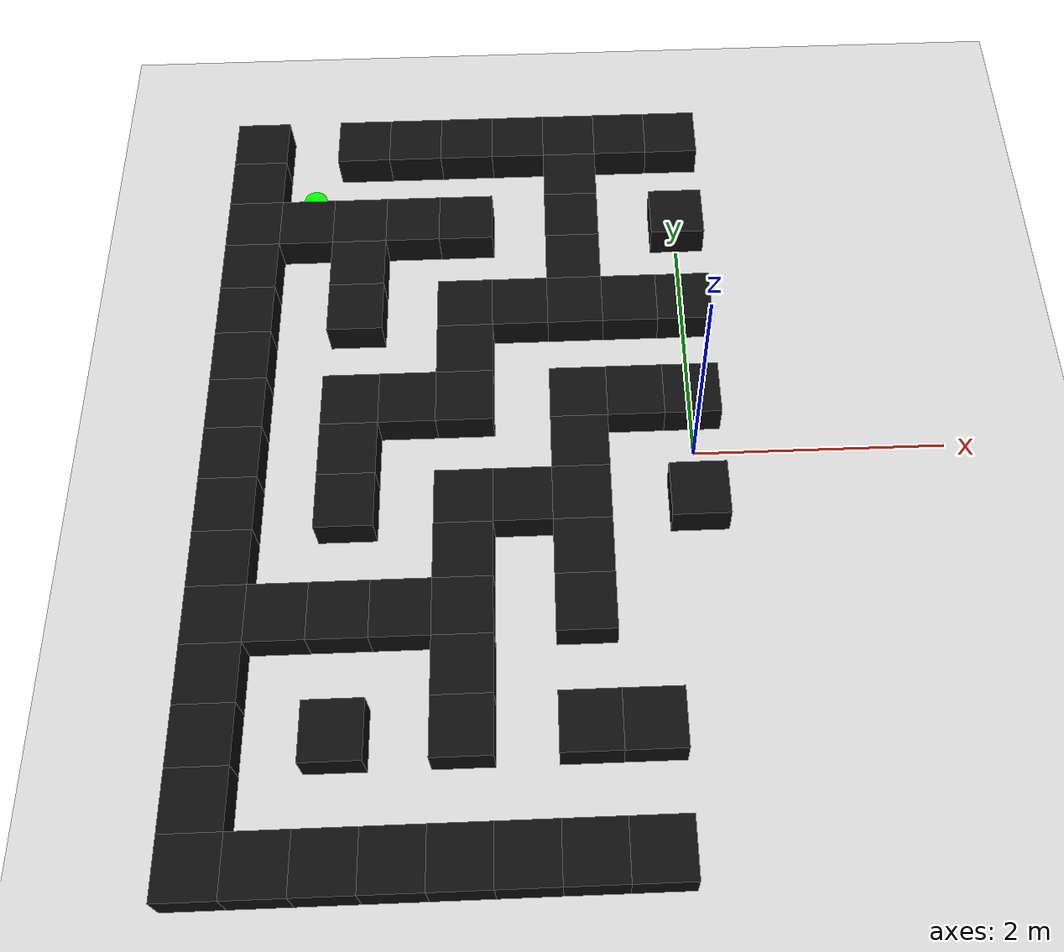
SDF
<sdf version="1.9">
 <world name="maze_islands_world">
  <model name="ground_plane">
   <static>true</static>
   <link name="link">
    <collision name="collision">
     <geometry><plane><normal>0 0 1</normal><size>30 30</size></plane></geometry>
    </collision>
    <visual name="visual">
     <geometry><plane><normal>0 0 1</normal><size>30 30</size></plane></geometry>
     <material><ambient>0.82 0.82 0.82 1</ambient><diffuse>0.82 0.82 0.82 1</diffuse></material>
    </visual>
   </link>
  </model>
  <model name="wall_0">
   <static>true</static>
   <pose>-3.6 3.15 0.14 0 0 0</pose>
   <link name="link">
    <collision name="collision"><geometry><box><size>0.45 0.45 0.28</size></box></geometry></collision>
    <visual name="visual">
     <geometry><box><size>0.45 0.45 0.28</size></box></geometry>
     <material><ambient>0.05 0.05 0.05 1</ambient><diffuse>0.05 0.05 0.05 1</diffuse></material>
    </visual>
   </link>
  </model>
  <model name="wall_1">
   <static>true</static>
   <pose>-2.7 3.15 0.14 0 0 0</pose>
   <link name="link">
    <collision name="collision"><geometry><box><size>0.45 0.45 0.28</size></box></geometry></collision>
    <visual name="visual">
     <geometry><box><size>0.45 0.45 0.28</size></box></geometry>
     <material><ambient>0.05 0.05 0.05 1</ambient><diffuse>0.05 0.05 0.05 1</diffuse></material>
    </visual>
   </link>
  </model>
  <model name="wall_2">
   <static>true</static>
   <pose>-2.25 3.15 0.14 0 0 0</pose>
   <link name="link">
    <collision name="collision"><geometry><box><size>0.45 0.45 0.28</size></box></geometry></collision>
    <visual name="visual">
     <geometry><box><size>0.45 0.45 0.28</size></box></geometry>
     <material><ambient>0.05 0.05 0.05 1</ambient><diffuse>0.05 0.05 0.05 1</diffuse></material>
    </visual>
   </link>
  </model>
  <model name="wall_3">
   <static>true</static>
   <pose>-1.8 3.15 0.14 0 0 0</pose>
   <link name="link">
    <collision name="collision"><geometry><box><size>0.45 0.45 0.28</size></box></geometry></collision>
    <visual name="visual">
     <geometry><box><size>0.45 0.45 0.28</size></box></geometry>
     <material><ambient>0.05 0.05 0.05 1</ambient><diffuse>0.05 0.05 0.05 1</diffuse></material>
    </visual>
   </link>
  </model>
  <model name="wall_4">
   <static>true</static>
   <pose>-1.35 3.15 0.14 0 0 0</pose>
   <link name="link">
    <collision name="collision"><geometry><box><size>0.45 0.45 0.28</size></box></geometry></collision>
    <visual name="visual">
     <geometry><box><size>0.45 0.45 0.28</size></box></geometry>
     <material><ambient>0.05 0.05 0.05 1</ambient><diffuse>0.05 0.05 0.05 1</diffuse></material>
    </visual>
   </link>
  </model>
  <model name="wall_5">
   <static>true</static>
   <pose>-0.9 3.15 0.14 0 0 0</pose>
   <link name="link">
    <collision name="collision"><geometry><box><size>0.45 0.45 0.28</size></box></geometry></collision>
    <visual name="visual">
     <geometry><box><size>0.45 0.45 0.28</size></box></geometry>
     <material><ambient>0.05 0.05 0.05 1</ambient><diffuse>0.05 0.05 0.05 1</diffuse></material>
    </visual>
   </link>
  </model>
  <model name="wall_6">
   <static>true</static>
   <pose>-0.45 3.15 0.14 0 0 0</pose>
   <link name="link">
    <collision name="collision"><geometry><box><size>0.45 0.45 0.28</size></box></geometry></collision>
    <visual name="visual">
     <geometry><box><size>0.45 0.45 0.28</size></box></geometry>
     <material><ambient>0.05 0.05 0.05 1</ambient><diffuse>0.05 0.05 0.05 1</diffuse></material>
    </visual>
   </link>
  </model>
  <model name="wall_7">
   <static>true</static>
   <pose>0.0 3.15 0.14 0 0 0</pose>
   <link name="link">
    <collision name="collision"><geometry><box><size>0.45 0.45 0.28</size></box></geometry></collision>
    <visual name="visual">
     <geometry><box><size>0.45 0.45 0.28</size></box></geometry>
     <material><ambient>0.05 0.05 0.05 1</ambient><diffuse>0.05 0.05 0.05 1</diffuse></material>
    </visual>
   </link>
  </model>
  <model name="wall_16">
   <static>true</static>
   <pose>-3.6 2.7 0.14 0 0 0</pose>
   <link name="link">
    <collision name="collision"><geometry><box><size>0.45 0.45 0.28</size></box></geometry></collision>
    <visual name="visual">
     <geometry><box><size>0.45 0.45 0.28</size></box></geometry>
     <material><ambient>0.05 0.05 0.05 1</ambient><diffuse>0.05 0.05 0.05 1</diffuse></material>
    </visual>
   </link>
  </model>
  <model name="wall_17">
   <static>true</static>
   <pose>-0.9 2.7 0.14 0 0 0</pose>
   <link name="link">
    <collision name="collision"><geometry><box><size>0.45 0.45 0.28</size></box></geometry></collision>
    <visual name="visual">
     <geometry><box><size>0.45 0.45 0.28</size></box></geometry>
     <material><ambient>0.05 0.05 0.05 1</ambient><diffuse>0.05 0.05 0.05 1</diffuse></material>
    </visual>
   </link>
  </model>
  <model name="wall_19">
   <static>true</static>
   <pose>-3.6 2.25 0.14 0 0 0</pose>
   <link name="link">
    <collision name="collision"><geometry><box><size>0.45 0.45 0.28</size></box></geometry></collision>
    <visual name="visual">
     <geometry><box><size>0.45 0.45 0.28</size></box></geometry>
     <material><ambient>0.05 0.05 0.05 1</ambient><diffuse>0.05 0.05 0.05 1</diffuse></material>
    </visual>
   </link>
  </model>
  <model name="wall_20">
   <static>true</static>
   <pose>-3.15 2.25 0.14 0 0 0</pose>
   <link name="link">
    <collision name="collision"><geometry><box><size>0.45 0.45 0.28</size></box></geometry></collision>
    <visual name="visual">
     <geometry><box><size>0.45 0.45 0.28</size></box></geometry>
     <material><ambient>0.05 0.05 0.05 1</ambient><diffuse>0.05 0.05 0.05 1</diffuse></material>
    </visual>
   </link>
  </model>
  <model name="wall_21">
   <static>true</static>
   <pose>-2.7 2.25 0.14 0 0 0</pose>
   <link name="link">
    <collision name="collision"><geometry><box><size>0.45 0.45 0.28</size></box></geometry></collision>
    <visual name="visual">
     <geometry><box><size>0.45 0.45 0.28</size></box></geometry>
     <material><ambient>0.05 0.05 0.05 1</ambient><diffuse>0.05 0.05 0.05 1</diffuse></material>
    </visual>
   </link>
  </model>
  <model name="wall_22">
   <static>true</static>
   <pose>-2.25 2.25 0.14 0 0 0</pose>
   <link name="link">
    <collision name="collision"><geometry><box><size>0.45 0.45 0.28</size></box></geometry></collision>
    <visual name="visual">
     <geometry><box><size>0.45 0.45 0.28</size></box></geometry>
     <material><ambient>0.05 0.05 0.05 1</ambient><diffuse>0.05 0.05 0.05 1</diffuse></material>
    </visual>
   </link>
  </model>
  <model name="wall_23">
   <static>true</static>
   <pose>-1.8 2.25 0.14 0 0 0</pose>
   <link name="link">
    <collision name="collision"><geometry><box><size>0.45 0.45 0.28</size></box></geometry></collision>
    <visual name="visual">
     <geometry><box><size>0.45 0.45 0.28</size></box></geometry>
     <material><ambient>0.05 0.05 0.05 1</ambient><diffuse>0.05 0.05 0.05 1</diffuse></material>
    </visual>
   </link>
  </model>
  <model name="wall_24">
   <static>true</static>
   <pose>-0.9 2.25 0.14 0 0 0</pose>
   <link name="link">
    <collision name="collision"><geometry><box><size>0.45 0.45 0.28</size></box></geometry></collision>
    <visual name="visual">
     <geometry><box><size>0.45 0.45 0.28</size></box></geometry>
     <material><ambient>0.05 0.05 0.05 1</ambient><diffuse>0.05 0.05 0.05 1</diffuse></material>
    </visual>
   </link>
  </model>
  <model name="wall_25">
   <static>true</static>
   <pose>0.0 2.25 0.14 0 0 0</pose>
   <link name="link">
    <collision name="collision"><geometry><box><size>0.45 0.45 0.28</size></box></geometry></collision>
    <visual name="visual">
     <geometry><box><size>0.45 0.45 0.28</size></box></geometry>
     <material><ambient>0.05 0.05 0.05 1</ambient><diffuse>0.05 0.05 0.05 1</diffuse></material>
    </visual>
   </link>
  </model>
  <model name="wall_31">
   <static>true</static>
   <pose>-3.6 1.8 0.14 0 0 0</pose>
   <link name="link">
    <collision name="collision"><geometry><box><size>0.45 0.45 0.28</size></box></geometry></collision>
    <visual name="visual">
     <geometry><box><size>0.45 0.45 0.28</size></box></geometry>
     <material><ambient>0.05 0.05 0.05 1</ambient><diffuse>0.05 0.05 0.05 1</diffuse></material>
    </visual>
   </link>
  </model>
  <model name="wall_32">
   <static>true</static>
   <pose>-2.7 1.8 0.14 0 0 0</pose>
   <link name="link">
    <collision name="collision"><geometry><box><size>0.45 0.45 0.28</size></box></geometry></collision>
    <visual name="visual">
     <geometry><box><size>0.45 0.45 0.28</size></box></geometry>
     <material><ambient>0.05 0.05 0.05 1</ambient><diffuse>0.05 0.05 0.05 1</diffuse></material>
    </visual>
   </link>
  </model>
  <model name="wall_33">
   <static>true</static>
   <pose>-0.9 1.8 0.14 0 0 0</pose>
   <link name="link">
    <collision name="collision"><geometry><box><size>0.45 0.45 0.28</size></box></geometry></collision>
    <visual name="visual">
     <geometry><box><size>0.45 0.45 0.28</size></box></geometry>
     <material><ambient>0.05 0.05 0.05 1</ambient><diffuse>0.05 0.05 0.05 1</diffuse></material>
    </visual>
   </link>
  </model>
  <model name="wall_37">
   <static>true</static>
   <pose>-3.6 1.35 0.14 0 0 0</pose>
   <link name="link">
    <collision name="collision"><geometry><box><size>0.45 0.45 0.28</size></box></geometry></collision>
    <visual name="visual">
     <geometry><box><size>0.45 0.45 0.28</size></box></geometry>
     <material><ambient>0.05 0.05 0.05 1</ambient><diffuse>0.05 0.05 0.05 1</diffuse></material>
    </visual>
   </link>
  </model>
  <model name="wall_38">
   <static>true</static>
   <pose>-2.7 1.35 0.14 0 0 0</pose>
   <link name="link">
    <collision name="collision"><geometry><box><size>0.45 0.45 0.28</size></box></geometry></collision>
    <visual name="visual">
     <geometry><box><size>0.45 0.45 0.28</size></box></geometry>
     <material><ambient>0.05 0.05 0.05 1</ambient><diffuse>0.05 0.05 0.05 1</diffuse></material>
    </visual>
   </link>
  </model>
  <model name="wall_39">
   <static>true</static>
   <pose>-1.8 1.35 0.14 0 0 0</pose>
   <link name="link">
    <collision name="collision"><geometry><box><size>0.45 0.45 0.28</size></box></geometry></collision>
    <visual name="visual">
     <geometry><box><size>0.45 0.45 0.28</size></box></geometry>
     <material><ambient>0.05 0.05 0.05 1</ambient><diffuse>0.05 0.05 0.05 1</diffuse></material>
    </visual>
   </link>
  </model>
  <model name="wall_40">
   <static>true</static>
   <pose>-1.35 1.35 0.14 0 0 0</pose>
   <link name="link">
    <collision name="collision"><geometry><box><size>0.45 0.45 0.28</size></box></geometry></collision>
    <visual name="visual">
     <geometry><box><size>0.45 0.45 0.28</size></box></geometry>
     <material><ambient>0.05 0.05 0.05 1</ambient><diffuse>0.05 0.05 0.05 1</diffuse></material>
    </visual>
   </link>
  </model>
  <model name="wall_41">
   <static>true</static>
   <pose>-0.9 1.35 0.14 0 0 0</pose>
   <link name="link">
    <collision name="collision"><geometry><box><size>0.45 0.45 0.28</size></box></geometry></collision>
    <visual name="visual">
     <geometry><box><size>0.45 0.45 0.28</size></box></geometry>
     <material><ambient>0.05 0.05 0.05 1</ambient><diffuse>0.05 0.05 0.05 1</diffuse></material>
    </visual>
   </link>
  </model>
  <model name="wall_42">
   <static>true</static>
   <pose>-0.45 1.35 0.14 0 0 0</pose>
   <link name="link">
    <collision name="collision"><geometry><box><size>0.45 0.45 0.28</size></box></geometry></collision>
    <visual name="visual">
     <geometry><box><size>0.45 0.45 0.28</size></box></geometry>
     <material><ambient>0.05 0.05 0.05 1</ambient><diffuse>0.05 0.05 0.05 1</diffuse></material>
    </visual>
   </link>
  </model>
  <model name="wall_43">
   <static>true</static>
   <pose>0.0 1.35 0.14 0 0 0</pose>
   <link name="link">
    <collision name="collision"><geometry><box><size>0.45 0.45 0.28</size></box></geometry></collision>
    <visual name="visual">
     <geometry><box><size>0.45 0.45 0.28</size></box></geometry>
     <material><ambient>0.05 0.05 0.05 1</ambient><diffuse>0.05 0.05 0.05 1</diffuse></material>
    </visual>
   </link>
  </model>
  <model name="wall_49">
   <static>true</static>
   <pose>-3.6 0.9 0.14 0 0 0</pose>
   <link name="link">
    <collision name="collision"><geometry><box><size>0.45 0.45 0.28</size></box></geometry></collision>
    <visual name="visual">
     <geometry><box><size>0.45 0.45 0.28</size></box></geometry>
     <material><ambient>0.05 0.05 0.05 1</ambient><diffuse>0.05 0.05 0.05 1</diffuse></material>
    </visual>
   </link>
  </model>
  <model name="wall_50">
   <static>true</static>
   <pose>-1.8 0.9 0.14 0 0 0</pose>
   <link name="link">
    <collision name="collision"><geometry><box><size>0.45 0.45 0.28</size></box></geometry></collision>
    <visual name="visual">
     <geometry><box><size>0.45 0.45 0.28</size></box></geometry>
     <material><ambient>0.05 0.05 0.05 1</ambient><diffuse>0.05 0.05 0.05 1</diffuse></material>
    </visual>
   </link>
  </model>
  <model name="wall_55">
   <static>true</static>
   <pose>-3.6 0.45 0.14 0 0 0</pose>
   <link name="link">
    <collision name="collision"><geometry><box><size>0.45 0.45 0.28</size></box></geometry></collision>
    <visual name="visual">
     <geometry><box><size>0.45 0.45 0.28</size></box></geometry>
     <material><ambient>0.05 0.05 0.05 1</ambient><diffuse>0.05 0.05 0.05 1</diffuse></material>
    </visual>
   </link>
  </model>
  <model name="wall_56">
   <static>true</static>
   <pose>-2.7 0.45 0.14 0 0 0</pose>
   <link name="link">
    <collision name="collision"><geometry><box><size>0.45 0.45 0.28</size></box></geometry></collision>
    <visual name="visual">
     <geometry><box><size>0.45 0.45 0.28</size></box></geometry>
     <material><ambient>0.05 0.05 0.05 1</ambient><diffuse>0.05 0.05 0.05 1</diffuse></material>
    </visual>
   </link>
  </model>
  <model name="wall_57">
   <static>true</static>
   <pose>-2.25 0.45 0.14 0 0 0</pose>
   <link name="link">
    <collision name="collision"><geometry><box><size>0.45 0.45 0.28</size></box></geometry></collision>
    <visual name="visual">
     <geometry><box><size>0.45 0.45 0.28</size></box></geometry>
     <material><ambient>0.05 0.05 0.05 1</ambient><diffuse>0.05 0.05 0.05 1</diffuse></material>
    </visual>
   </link>
  </model>
  <model name="wall_58">
   <static>true</static>
   <pose>-1.8 0.45 0.14 0 0 0</pose>
   <link name="link">
    <collision name="collision"><geometry><box><size>0.45 0.45 0.28</size></box></geometry></collision>
    <visual name="visual">
     <geometry><box><size>0.45 0.45 0.28</size></box></geometry>
     <material><ambient>0.05 0.05 0.05 1</ambient><diffuse>0.05 0.05 0.05 1</diffuse></material>
    </visual>
   </link>
  </model>
  <model name="wall_59">
   <static>true</static>
   <pose>-0.9 0.45 0.14 0 0 0</pose>
   <link name="link">
    <collision name="collision"><geometry><box><size>0.45 0.45 0.28</size></box></geometry></collision>
    <visual name="visual">
     <geometry><box><size>0.45 0.45 0.28</size></box></geometry>
     <material><ambient>0.05 0.05 0.05 1</ambient><diffuse>0.05 0.05 0.05 1</diffuse></material>
    </visual>
   </link>
  </model>
  <model name="wall_60">
   <static>true</static>
   <pose>-0.45 0.45 0.14 0 0 0</pose>
   <link name="link">
    <collision name="collision"><geometry><box><size>0.45 0.45 0.28</size></box></geometry></collision>
    <visual name="visual">
     <geometry><box><size>0.45 0.45 0.28</size></box></geometry>
     <material><ambient>0.05 0.05 0.05 1</ambient><diffuse>0.05 0.05 0.05 1</diffuse></material>
    </visual>
   </link>
  </model>
  <model name="wall_61">
   <static>true</static>
   <pose>0.0 0.45 0.14 0 0 0</pose>
   <link name="link">
    <collision name="collision"><geometry><box><size>0.45 0.45 0.28</size></box></geometry></collision>
    <visual name="visual">
     <geometry><box><size>0.45 0.45 0.28</size></box></geometry>
     <material><ambient>0.05 0.05 0.05 1</ambient><diffuse>0.05 0.05 0.05 1</diffuse></material>
    </visual>
   </link>
  </model>
  <model name="wall_66">
   <static>true</static>
   <pose>-3.6 0.0 0.14 0 0 0</pose>
   <link name="link">
    <collision name="collision"><geometry><box><size>0.45 0.45 0.28</size></box></geometry></collision>
    <visual name="visual">
     <geometry><box><size>0.45 0.45 0.28</size></box></geometry>
     <material><ambient>0.05 0.05 0.05 1</ambient><diffuse>0.05 0.05 0.05 1</diffuse></material>
    </visual>
   </link>
  </model>
  <model name="wall_67">
   <static>true</static>
   <pose>-2.7 0.0 0.14 0 0 0</pose>
   <link name="link">
    <collision name="collision"><geometry><box><size>0.45 0.45 0.28</size></box></geometry></collision>
    <visual name="visual">
     <geometry><box><size>0.45 0.45 0.28</size></box></geometry>
     <material><ambient>0.05 0.05 0.05 1</ambient><diffuse>0.05 0.05 0.05 1</diffuse></material>
    </visual>
   </link>
  </model>
  <model name="wall_68">
   <static>true</static>
   <pose>-0.9 0.0 0.14 0 0 0</pose>
   <link name="link">
    <collision name="collision"><geometry><box><size>0.45 0.45 0.28</size></box></geometry></collision>
    <visual name="visual">
     <geometry><box><size>0.45 0.45 0.28</size></box></geometry>
     <material><ambient>0.05 0.05 0.05 1</ambient><diffuse>0.05 0.05 0.05 1</diffuse></material>
    </visual>
   </link>
  </model>
  <model name="wall_73">
   <static>true</static>
   <pose>-3.6 -0.45 0.14 0 0 0</pose>
   <link name="link">
    <collision name="collision"><geometry><box><size>0.45 0.45 0.28</size></box></geometry></collision>
    <visual name="visual">
     <geometry><box><size>0.45 0.45 0.28</size></box></geometry>
     <material><ambient>0.05 0.05 0.05 1</ambient><diffuse>0.05 0.05 0.05 1</diffuse></material>
    </visual>
   </link>
  </model>
  <model name="wall_74">
   <static>true</static>
   <pose>-2.7 -0.45 0.14 0 0 0</pose>
   <link name="link">
    <collision name="collision"><geometry><box><size>0.45 0.45 0.28</size></box></geometry></collision>
    <visual name="visual">
     <geometry><box><size>0.45 0.45 0.28</size></box></geometry>
     <material><ambient>0.05 0.05 0.05 1</ambient><diffuse>0.05 0.05 0.05 1</diffuse></material>
    </visual>
   </link>
  </model>
  <model name="wall_75">
   <static>true</static>
   <pose>-1.8 -0.45 0.14 0 0 0</pose>
   <link name="link">
    <collision name="collision"><geometry><box><size>0.45 0.45 0.28</size></box></geometry></collision>
    <visual name="visual">
     <geometry><box><size>0.45 0.45 0.28</size></box></geometry>
     <material><ambient>0.05 0.05 0.05 1</ambient><diffuse>0.05 0.05 0.05 1</diffuse></material>
    </visual>
   </link>
  </model>
  <model name="wall_76">
   <static>true</static>
   <pose>-1.35 -0.45 0.14 0 0 0</pose>
   <link name="link">
    <collision name="collision"><geometry><box><size>0.45 0.45 0.28</size></box></geometry></collision>
    <visual name="visual">
     <geometry><box><size>0.45 0.45 0.28</size></box></geometry>
     <material><ambient>0.05 0.05 0.05 1</ambient><diffuse>0.05 0.05 0.05 1</diffuse></material>
    </visual>
   </link>
  </model>
  <model name="wall_77">
   <static>true</static>
   <pose>-0.9 -0.45 0.14 0 0 0</pose>
   <link name="link">
    <collision name="collision"><geometry><box><size>0.45 0.45 0.28</size></box></geometry></collision>
    <visual name="visual">
     <geometry><box><size>0.45 0.45 0.28</size></box></geometry>
     <material><ambient>0.05 0.05 0.05 1</ambient><diffuse>0.05 0.05 0.05 1</diffuse></material>
    </visual>
   </link>
  </model>
  <model name="wall_78">
   <static>true</static>
   <pose>0.0 -0.45 0.14 0 0 0</pose>
   <link name="link">
    <collision name="collision"><geometry><box><size>0.45 0.45 0.28</size></box></geometry></collision>
    <visual name="visual">
     <geometry><box><size>0.45 0.45 0.28</size></box></geometry>
     <material><ambient>0.05 0.05 0.05 1</ambient><diffuse>0.05 0.05 0.05 1</diffuse></material>
    </visual>
   </link>
  </model>
  <model name="wall_85">
   <static>true</static>
   <pose>-3.6 -0.9 0.14 0 0 0</pose>
   <link name="link">
    <collision name="collision"><geometry><box><size>0.45 0.45 0.28</size></box></geometry></collision>
    <visual name="visual">
     <geometry><box><size>0.45 0.45 0.28</size></box></geometry>
     <material><ambient>0.05 0.05 0.05 1</ambient><diffuse>0.05 0.05 0.05 1</diffuse></material>
    </visual>
   </link>
  </model>
  <model name="wall_86">
   <static>true</static>
   <pose>-1.8 -0.9 0.14 0 0 0</pose>
   <link name="link">
    <collision name="collision"><geometry><box><size>0.45 0.45 0.28</size></box></geometry></collision>
    <visual name="visual">
     <geometry><box><size>0.45 0.45 0.28</size></box></geometry>
     <material><ambient>0.05 0.05 0.05 1</ambient><diffuse>0.05 0.05 0.05 1</diffuse></material>
    </visual>
   </link>
  </model>
  <model name="wall_87">
   <static>true</static>
   <pose>-0.9 -0.9 0.14 0 0 0</pose>
   <link name="link">
    <collision name="collision"><geometry><box><size>0.45 0.45 0.28</size></box></geometry></collision>
    <visual name="visual">
     <geometry><box><size>0.45 0.45 0.28</size></box></geometry>
     <material><ambient>0.05 0.05 0.05 1</ambient><diffuse>0.05 0.05 0.05 1</diffuse></material>
    </visual>
   </link>
  </model>
  <model name="wall_91">
   <static>true</static>
   <pose>-3.6 -1.35 0.14 0 0 0</pose>
   <link name="link">
    <collision name="collision"><geometry><box><size>0.45 0.45 0.28</size></box></geometry></collision>
    <visual name="visual">
     <geometry><box><size>0.45 0.45 0.28</size></box></geometry>
     <material><ambient>0.05 0.05 0.05 1</ambient><diffuse>0.05 0.05 0.05 1</diffuse></material>
    </visual>
   </link>
  </model>
  <model name="wall_92">
   <static>true</static>
   <pose>-3.15 -1.35 0.14 0 0 0</pose>
   <link name="link">
    <collision name="collision"><geometry><box><size>0.45 0.45 0.28</size></box></geometry></collision>
    <visual name="visual">
     <geometry><box><size>0.45 0.45 0.28</size></box></geometry>
     <material><ambient>0.05 0.05 0.05 1</ambient><diffuse>0.05 0.05 0.05 1</diffuse></material>
    </visual>
   </link>
  </model>
  <model name="wall_93">
   <static>true</static>
   <pose>-2.7 -1.35 0.14 0 0 0</pose>
   <link name="link">
    <collision name="collision"><geometry><box><size>0.45 0.45 0.28</size></box></geometry></collision>
    <visual name="visual">
     <geometry><box><size>0.45 0.45 0.28</size></box></geometry>
     <material><ambient>0.05 0.05 0.05 1</ambient><diffuse>0.05 0.05 0.05 1</diffuse></material>
    </visual>
   </link>
  </model>
  <model name="wall_94">
   <static>true</static>
   <pose>-2.25 -1.35 0.14 0 0 0</pose>
   <link name="link">
    <collision name="collision"><geometry><box><size>0.45 0.45 0.28</size></box></geometry></collision>
    <visual name="visual">
     <geometry><box><size>0.45 0.45 0.28</size></box></geometry>
     <material><ambient>0.05 0.05 0.05 1</ambient><diffuse>0.05 0.05 0.05 1</diffuse></material>
    </visual>
   </link>
  </model>
  <model name="wall_95">
   <static>true</static>
   <pose>-1.8 -1.35 0.14 0 0 0</pose>
   <link name="link">
    <collision name="collision"><geometry><box><size>0.45 0.45 0.28</size></box></geometry></collision>
    <visual name="visual">
     <geometry><box><size>0.45 0.45 0.28</size></box></geometry>
     <material><ambient>0.05 0.05 0.05 1</ambient><diffuse>0.05 0.05 0.05 1</diffuse></material>
    </visual>
   </link>
  </model>
  <model name="wall_96">
   <static>true</static>
   <pose>-0.9 -1.35 0.14 0 0 0</pose>
   <link name="link">
    <collision name="collision"><geometry><box><size>0.45 0.45 0.28</size></box></geometry></collision>
    <visual name="visual">
     <geometry><box><size>0.45 0.45 0.28</size></box></geometry>
     <material><ambient>0.05 0.05 0.05 1</ambient><diffuse>0.05 0.05 0.05 1</diffuse></material>
    </visual>
   </link>
  </model>
  <model name="wall_103">
   <static>true</static>
   <pose>-3.6 -1.8 0.14 0 0 0</pose>
   <link name="link">
    <collision name="collision"><geometry><box><size>0.45 0.45 0.28</size></box></geometry></collision>
    <visual name="visual">
     <geometry><box><size>0.45 0.45 0.28</size></box></geometry>
     <material><ambient>0.05 0.05 0.05 1</ambient><diffuse>0.05 0.05 0.05 1</diffuse></material>
    </visual>
   </link>
  </model>
  <model name="wall_104">
   <static>true</static>
   <pose>-1.8 -1.8 0.14 0 0 0</pose>
   <link name="link">
    <collision name="collision"><geometry><box><size>0.45 0.45 0.28</size></box></geometry></collision>
    <visual name="visual">
     <geometry><box><size>0.45 0.45 0.28</size></box></geometry>
     <material><ambient>0.05 0.05 0.05 1</ambient><diffuse>0.05 0.05 0.05 1</diffuse></material>
    </visual>
   </link>
  </model>
  <model name="wall_109">
   <static>true</static>
   <pose>-3.6 -2.25 0.14 0 0 0</pose>
   <link name="link">
    <collision name="collision"><geometry><box><size>0.45 0.45 0.28</size></box></geometry></collision>
    <visual name="visual">
     <geometry><box><size>0.45 0.45 0.28</size></box></geometry>
     <material><ambient>0.05 0.05 0.05 1</ambient><diffuse>0.05 0.05 0.05 1</diffuse></material>
    </visual>
   </link>
  </model>
  <model name="wall_110">
   <static>true</static>
   <pose>-2.7 -2.25 0.14 0 0 0</pose>
   <link name="link">
    <collision name="collision"><geometry><box><size>0.45 0.45 0.28</size></box></geometry></collision>
    <visual name="visual">
     <geometry><box><size>0.45 0.45 0.28</size></box></geometry>
     <material><ambient>0.05 0.05 0.05 1</ambient><diffuse>0.05 0.05 0.05 1</diffuse></material>
    </visual>
   </link>
  </model>
  <model name="wall_111">
   <static>true</static>
   <pose>-1.8 -2.25 0.14 0 0 0</pose>
   <link name="link">
    <collision name="collision"><geometry><box><size>0.45 0.45 0.28</size></box></geometry></collision>
    <visual name="visual">
     <geometry><box><size>0.45 0.45 0.28</size></box></geometry>
     <material><ambient>0.05 0.05 0.05 1</ambient><diffuse>0.05 0.05 0.05 1</diffuse></material>
    </visual>
   </link>
  </model>
  <model name="wall_112">
   <static>true</static>
   <pose>-0.9 -2.25 0.14 0 0 0</pose>
   <link name="link">
    <collision name="collision"><geometry><box><size>0.45 0.45 0.28</size></box></geometry></collision>
    <visual name="visual">
     <geometry><box><size>0.45 0.45 0.28</size></box></geometry>
     <material><ambient>0.05 0.05 0.05 1</ambient><diffuse>0.05 0.05 0.05 1</diffuse></material>
    </visual>
   </link>
  </model>
  <model name="wall_113">
   <static>true</static>
   <pose>-0.45 -2.25 0.14 0 0 0</pose>
   <link name="link">
    <collision name="collision"><geometry><box><size>0.45 0.45 0.28</size></box></geometry></collision>
    <visual name="visual">
     <geometry><box><size>0.45 0.45 0.28</size></box></geometry>
     <material><ambient>0.05 0.05 0.05 1</ambient><diffuse>0.05 0.05 0.05 1</diffuse></material>
    </visual>
   </link>
  </model>
  <model name="wall_121">
   <static>true</static>
   <pose>-3.6 -2.7 0.14 0 0 0</pose>
   <link name="link">
    <collision name="collision"><geometry><box><size>0.45 0.45 0.28</size></box></geometry></collision>
    <visual name="visual">
     <geometry><box><size>0.45 0.45 0.28</size></box></geometry>
     <material><ambient>0.05 0.05 0.05 1</ambient><diffuse>0.05 0.05 0.05 1</diffuse></material>
    </visual>
   </link>
  </model>
  <model name="wall_124">
   <static>true</static>
   <pose>-3.6 -3.15 0.14 0 0 0</pose>
   <link name="link">
    <collision name="collision"><geometry><box><size>0.45 0.45 0.28</size></box></geometry></collision>
    <visual name="visual">
     <geometry><box><size>0.45 0.45 0.28</size></box></geometry>
     <material><ambient>0.05 0.05 0.05 1</ambient><diffuse>0.05 0.05 0.05 1</diffuse></material>
    </visual>
   </link>
  </model>
  <model name="wall_125">
   <static>true</static>
   <pose>-3.15 -3.15 0.14 0 0 0</pose>
   <link name="link">
    <collision name="collision"><geometry><box><size>0.45 0.45 0.28</size></box></geometry></collision>
    <visual name="visual">
     <geometry><box><size>0.45 0.45 0.28</size></box></geometry>
     <material><ambient>0.05 0.05 0.05 1</ambient><diffuse>0.05 0.05 0.05 1</diffuse></material>
    </visual>
   </link>
  </model>
  <model name="wall_126">
   <static>true</static>
   <pose>-2.7 -3.15 0.14 0 0 0</pose>
   <link name="link">
    <collision name="collision"><geometry><box><size>0.45 0.45 0.28</size></box></geometry></collision>
    <visual name="visual">
     <geometry><box><size>0.45 0.45 0.28</size></box></geometry>
     <material><ambient>0.05 0.05 0.05 1</ambient><diffuse>0.05 0.05 0.05 1</diffuse></material>
    </visual>
   </link>
  </model>
  <model name="wall_127">
   <static>true</static>
   <pose>-2.25 -3.15 0.14 0 0 0</pose>
   <link name="link">
    <collision name="collision"><geometry><box><size>0.45 0.45 0.28</size></box></geometry></collision>
    <visual name="visual">
     <geometry><box><size>0.45 0.45 0.28</size></box></geometry>
     <material><ambient>0.05 0.05 0.05 1</ambient><diffuse>0.05 0.05 0.05 1</diffuse></material>
    </visual>
   </link>
  </model>
  <model name="wall_128">
   <static>true</static>
   <pose>-1.8 -3.15 0.14 0 0 0</pose>
   <link name="link">
    <collision name="collision"><geometry><box><size>0.45 0.45 0.28</size></box></geometry></collision>
    <visual name="visual">
     <geometry><box><size>0.45 0.45 0.28</size></box></geometry>
     <material><ambient>0.05 0.05 0.05 1</ambient><diffuse>0.05 0.05 0.05 1</diffuse></material>
    </visual>
   </link>
  </model>
  <model name="wall_129">
   <static>true</static>
   <pose>-1.35 -3.15 0.14 0 0 0</pose>
   <link name="link">
    <collision name="collision"><geometry><box><size>0.45 0.45 0.28</size></box></geometry></collision>
    <visual name="visual">
     <geometry><box><size>0.45 0.45 0.28</size></box></geometry>
     <material><ambient>0.05 0.05 0.05 1</ambient><diffuse>0.05 0.05 0.05 1</diffuse></material>
    </visual>
   </link>
  </model>
  <model name="wall_130">
   <static>true</static>
   <pose>-0.9 -3.15 0.14 0 0 0</pose>
   <link name="link">
    <collision name="collision"><geometry><box><size>0.45 0.45 0.28</size></box></geometry></collision>
    <visual name="visual">
     <geometry><box><size>0.45 0.45 0.28</size></box></geometry>
     <material><ambient>0.05 0.05 0.05 1</ambient><diffuse>0.05 0.05 0.05 1</diffuse></material>
    </visual>
   </link>
  </model>
  <model name="wall_131">
   <static>true</static>
   <pose>-0.45 -3.15 0.14 0 0 0</pose>
   <link name="link">
    <collision name="collision"><geometry><box><size>0.45 0.45 0.28</size></box></geometry></collision>
    <visual name="visual">
     <geometry><box><size>0.45 0.45 0.28</size></box></geometry>
     <material><ambient>0.05 0.05 0.05 1</ambient><diffuse>0.05 0.05 0.05 1</diffuse></material>
    </visual>
   </link>
  </model>
  <model name="start_marker">
   <static>true</static>
   <pose>-3.15 2.7 0.012 0 0 0</pose>
   <link name="link">
    <visual name="visual">
     <geometry><cylinder><radius>0.099</radius><length>0.024</length></cylinder></geometry>
     <material><ambient>0 1 0 1</ambient><diffuse>0 1 0 1</diffuse></material>
    </visual>
   </link>
  </model>
 </world>
</sdf>
